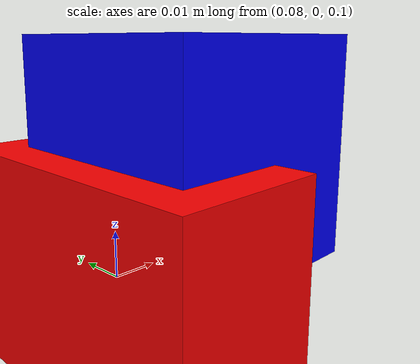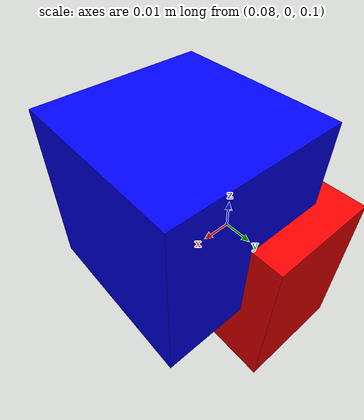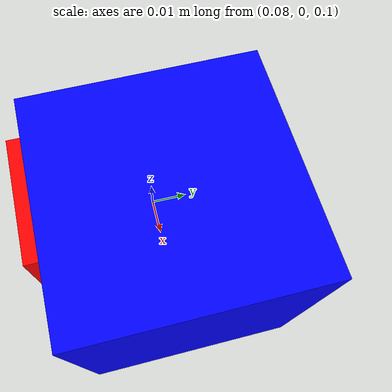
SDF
<?xml version="1.0" ?>
<sdf version="1.6">
  <model name="ir_sensor_test">
    <static>true</static>

    <!-- Base link - larger and colored red for visibility -->
    <link name="base_link">
      <pose>0 0 0.1 0 0 0</pose>
      <collision name="collision">
        <geometry>
          <box>
            <size>0.2 0.2 0.05</size>
          </box>
        </geometry>
      </collision>
      <visual name="visual">
        <geometry>
          <box>
            <size>0.2 0.2 0.05</size>
          </box>
        </geometry>
        <material>
          <ambient>1 0 0 1</ambient>
          <diffuse>1 0 0 1</diffuse>
        </material>
      </visual>
      <inertial>
        <mass>1.0</mass>
        <inertia>
          <ixx>0.1</ixx>
          <iyy>0.1</iyy>
          <izz>0.1</izz>
          <ixy>0</ixy>
          <ixz>0</ixz>
          <iyz>0</iyz>
        </inertia>
      </inertial>
    </link>

    <!-- IR sensor link - blue for visibility -->
    <link name="ir_sensor_link">
      <pose relative_to="base_link">0.1 0 0.025 0 0 0</pose>
      <collision name="collision">
        <geometry>
          <box>
            <size>0.05 0.05 0.05</size>
          </box>
        </geometry>
      </collision>
      <visual name="visual">
        <geometry>
          <box>
            <size>0.05 0.05 0.05</size>
          </box>
        </geometry>
        <material>
          <ambient>0 0 1 1</ambient>
          <diffuse>0 0 1 1</diffuse>
        </material>
      </visual>
      <inertial>
        <mass>0.1</mass>
        <inertia>
          <ixx>0.01</ixx>
          <iyy>0.01</iyy>
          <izz>0.01</izz>
          <ixy>0</ixy>
          <ixz>0</ixz>
          <iyz>0</iyz>
        </inertia>
      </inertial>

      <sensor name="ir_sensor" type="gpu_ray">
        <pose>0 0 0 0 0 0</pose>
        <always_on>1</always_on>
        <update_rate>30</update_rate>
        <visualize>true</visualize>
        <ray>
          <scan>
            <horizontal>
              <samples>10</samples>
              <resolution>1</resolution>
              <min_angle>-0.1</min_angle>
              <max_angle>0.1</max_angle>
            </horizontal>
          </scan>
          <range>
            <min>0.01</min>
            <max>1.0</max>
            <resolution>0.01</resolution>
          </range>
        </ray>
        <plugin name="ir_sensor_plugin" filename="libgazebo_ros_gpu_laser.so">
          <topicName>ir_sensor</topicName>
          <frameName>ir_sensor_link</frameName>
        </plugin>
      </sensor>
    </link>

    <!-- Joint connecting base to IR sensor -->
    <joint name="ir_joint" type="fixed">
      <parent>base_link</parent>
      <child>ir_sensor_link</child>
    </joint>
  </model>
</sdf>
